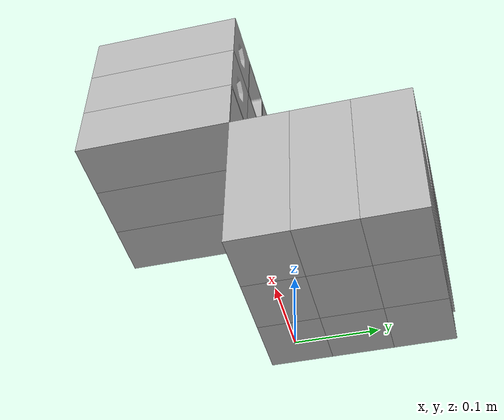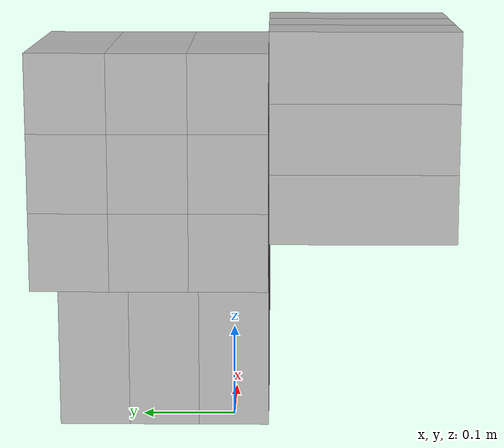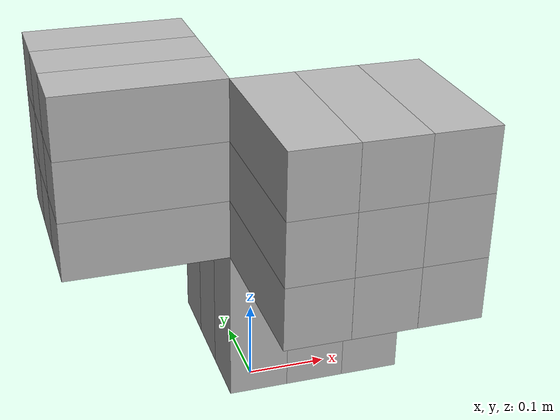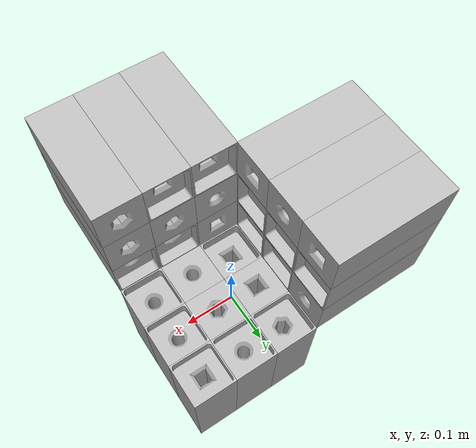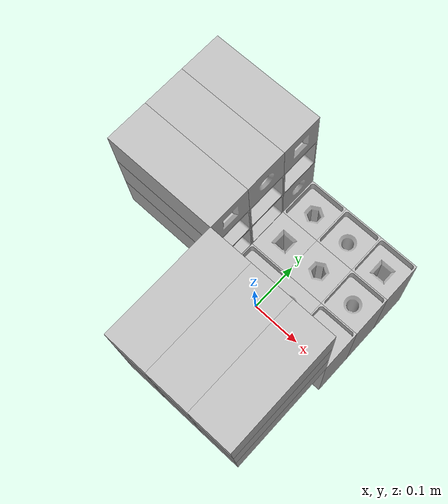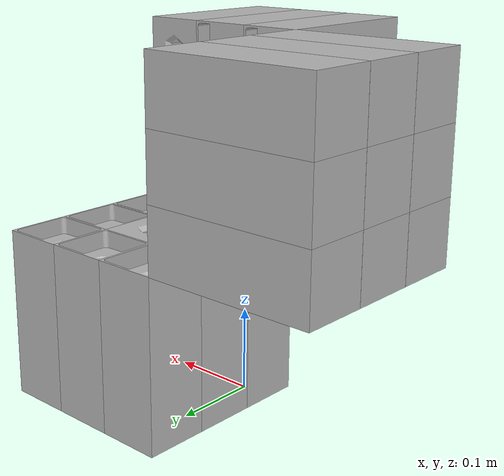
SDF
<sdf version='1.7'>
  <model name='pegboard_puzzle'>
    <link name='base_link'>
      <inertial>
        <pose>0 0 0 0 -0 0</pose>
        <mass>1</mass>
        <inertia>
          <ixx>1</ixx>
          <ixy>1</ixy>
          <ixz>1</ixz>
          <iyy>1</iyy>
          <iyz>1</iyz>
          <izz>1</izz>
        </inertia>
      </inertial>
    </link>
    <joint name='base_to_floor' type='fixed'>
      <pose relative_to='base_link'>0.15 0 0.2 0 -0 1.57</pose>
      <parent>base_link</parent>
      <child>floor</child>
      <axis>
        <dynamics>
          <spring_reference>0</spring_reference>
          <spring_stiffness>0</spring_stiffness>
        </dynamics>
        <xyz>0 0 1</xyz>
        <limit>
          <lower>-1e+16</lower>
          <upper>1e+16</upper>
        </limit>
      </axis>
      <physics>
        <ode>
          <limit>
            <cfm>0</cfm>
            <erp>0.2</erp>
          </limit>
        </ode>
      </physics>
    </joint>
    <link name='floor'>
      <pose relative_to='base_to_floor'>0 0 0 0 -0 0</pose>
      <inertial>
        <pose>0.0675 0.0675 0 0 -0 0</pose>
        <mass>10</mass>
        <inertia>
          <ixx>10.0388</ixx>
          <ixy>-7.99789</ixy>
          <ixz>10.0072</ixz>
          <iyy>10.0245</iyy>
          <iyz>-7.99999</iyz>
          <izz>10.092</izz>
        </inertia>
      </inertial>
      <collision name='floor_slot_0_collision'>
        <pose>0 0 0 1.57 -0 0</pose>
        <geometry>
          <mesh>
            <scale>1 1 1</scale>
            <uri>model://puzzle/meshes/lowCircleHole.STL</uri>
          </mesh>
        </geometry>
      </collision>
      <collision name='floor_slot_1_collision_1'>
        <pose>0 0.075 0 1.57 -0 0</pose>
        <geometry>
          <mesh>
            <scale>1 1 1</scale>
            <uri>model://puzzle/meshes/highCircleHole.STL</uri>
          </mesh>
        </geometry>
      </collision>
      <collision name='floor_slot_2_collision_2'>
        <pose>0 0.15 0 1.57 -0 0</pose>
        <geometry>
          <mesh>
            <scale>1 1 1</scale>
            <uri>model://puzzle/meshes/lowSquareHole.STL</uri>
          </mesh>
        </geometry>
      </collision>
      <collision name='floor_slot_3_collision_3'>
        <pose>0.075 0 0 1.57 -0 0</pose>
        <geometry>
          <mesh>
            <scale>1 1 1</scale>
            <uri>model://puzzle/meshes/lowCircleHole.STL</uri>
          </mesh>
        </geometry>
      </collision>
      <collision name='floor_slot_4_collision_4'>
        <pose>0.075 0.075 0 1.57 -0 0</pose>
        <geometry>
          <mesh>
            <scale>1 1 1</scale>
            <uri>model://puzzle/meshes/highHexHole.STL</uri>
          </mesh>
        </geometry>
      </collision>
      <collision name='floor_slot_5_collision_5'>
        <pose>0.075 0.15 0 1.57 -0 0</pose>
        <geometry>
          <mesh>
            <scale>1 1 1</scale>
            <uri>model://puzzle/meshes/highSquareHole.STL</uri>
          </mesh>
        </geometry>
      </collision>
      <collision name='floor_slot_6_collision_6'>
        <pose>0.15 0 0 1.57 -0 0</pose>
        <geometry>
          <mesh>
            <scale>1 1 1</scale>
            <uri>model://puzzle/meshes/lowSquareHole.STL</uri>
          </mesh>
        </geometry>
      </collision>
      <collision name='floor_slot_7_collision_7'>
        <pose>0.15 0.075 0 1.57 -0 0</pose>
        <geometry>
          <mesh>
            <scale>1 1 1</scale>
            <uri>model://puzzle/meshes/lowCircleHole.STL</uri>
          </mesh>
        </geometry>
      </collision>
      <collision name='floor_slot_8_collision_8'>
        <pose>0.15 0.15 0 1.57 -0 0</pose>
        <geometry>
          <mesh>
            <scale>1 1 1</scale>
            <uri>model://puzzle/meshes/lowHexHole.STL</uri>
          </mesh>
        </geometry>
      </collision>
      <visual name='floor_slot_0_visual'>
        <pose>0 0 0 1.57 -0 0</pose>
        <geometry>
          <mesh>
            <scale>1 1 1</scale>
            <uri>model://puzzle/meshes/lowCircleHole.STL</uri>
          </mesh>
        </geometry>
      </visual>
      <visual name='floor_slot_1_visual_1'>
        <pose>0 0.075 0 1.57 -0 0</pose>
        <geometry>
          <mesh>
            <scale>1 1 1</scale>
            <uri>model://puzzle/meshes/highCircleHole.STL</uri>
          </mesh>
        </geometry>
      </visual>
      <visual name='floor_slot_2_visual_2'>
        <pose>0 0.15 0 1.57 -0 0</pose>
        <geometry>
          <mesh>
            <scale>1 1 1</scale>
            <uri>model://puzzle/meshes/lowSquareHole.STL</uri>
          </mesh>
        </geometry>
      </visual>
      <visual name='floor_slot_3_visual_3'>
        <pose>0.075 0 0 1.57 -0 0</pose>
        <geometry>
          <mesh>
            <scale>1 1 1</scale>
            <uri>model://puzzle/meshes/lowCircleHole.STL</uri>
          </mesh>
        </geometry>
      </visual>
      <visual name='floor_slot_4_visual_4'>
        <pose>0.075 0.075 0 1.57 -0 0</pose>
        <geometry>
          <mesh>
            <scale>1 1 1</scale>
            <uri>model://puzzle/meshes/highHexHole.STL</uri>
          </mesh>
        </geometry>
      </visual>
      <visual name='floor_slot_5_visual_5'>
        <pose>0.075 0.15 0 1.57 -0 0</pose>
        <geometry>
          <mesh>
            <scale>1 1 1</scale>
            <uri>model://puzzle/meshes/highSquareHole.STL</uri>
          </mesh>
        </geometry>
      </visual>
      <visual name='floor_slot_6_visual_6'>
        <pose>0.15 0 0 1.57 -0 0</pose>
        <geometry>
          <mesh>
            <scale>1 1 1</scale>
            <uri>model://puzzle/meshes/lowSquareHole.STL</uri>
          </mesh>
        </geometry>
      </visual>
      <visual name='floor_slot_7_visual_7'>
        <pose>0.15 0.075 0 1.57 -0 0</pose>
        <geometry>
          <mesh>
            <scale>1 1 1</scale>
            <uri>model://puzzle/meshes/lowCircleHole.STL</uri>
          </mesh>
        </geometry>
      </visual>
      <visual name='floor_slot_8_visual_8'>
        <pose>0.15 0.15 0 1.57 -0 0</pose>
        <geometry>
          <mesh>
            <scale>1 1 1</scale>
            <uri>model://puzzle/meshes/lowHexHole.STL</uri>
          </mesh>
        </geometry>
      </visual>
    </link>
    <joint name='base_to_left' type='fixed'>
      <pose relative_to='base_link'>0.15 -0.037 0.387 -1.57 1.57 0</pose>
      <parent>base_link</parent>
      <child>left_wall</child>
      <axis>
        <dynamics>
          <spring_reference>0</spring_reference>
          <spring_stiffness>0</spring_stiffness>
        </dynamics>
        <xyz>0 0 1</xyz>
        <limit>
          <lower>-1e+16</lower>
          <upper>1e+16</upper>
        </limit>
      </axis>
      <physics>
        <ode>
          <limit>
            <cfm>0</cfm>
            <erp>0.2</erp>
          </limit>
        </ode>
      </physics>
    </joint>
    <link name='left_wall'>
      <pose relative_to='base_to_left'>0 0 0 0 -0 0</pose>
      <inertial>
        <pose>0.0675 0.0675 0 0 -0 0</pose>
        <mass>10</mass>
        <inertia>
          <ixx>10.0388</ixx>
          <ixy>-7.99789</ixy>
          <ixz>10.0072</ixz>
          <iyy>10.0245</iyy>
          <iyz>-7.99999</iyz>
          <izz>10.092</izz>
        </inertia>
      </inertial>
      <collision name='left_wall_slot_0_collision'>
        <pose>0 0 0 1.57 -0 0</pose>
        <geometry>
          <mesh>
            <scale>1 1 1</scale>
            <uri>model://puzzle/meshes/highHexHole.STL</uri>
          </mesh>
        </geometry>
      </collision>
      <collision name='left_wall_slot_1_collision_1'>
        <pose>0 0.075 0 1.57 -0 0</pose>
        <geometry>
          <mesh>
            <scale>1 1 1</scale>
            <uri>model://puzzle/meshes/lowSquareHole.STL</uri>
          </mesh>
        </geometry>
      </collision>
      <collision name='left_wall_slot_2_collision_2'>
        <pose>0 0.15 0 1.57 -0 0</pose>
        <geometry>
          <mesh>
            <scale>1 1 1</scale>
            <uri>model://puzzle/meshes/lowSquareHole.STL</uri>
          </mesh>
        </geometry>
      </collision>
      <collision name='left_wall_slot_3_collision_3'>
        <pose>0.075 0 0 1.57 -0 0</pose>
        <geometry>
          <mesh>
            <scale>1 1 1</scale>
            <uri>model://puzzle/meshes/highHexHole.STL</uri>
          </mesh>
        </geometry>
      </collision>
      <collision name='left_wall_slot_4_collision_4'>
        <pose>0.075 0.075 0 1.57 -0 0</pose>
        <geometry>
          <mesh>
            <scale>1 1 1</scale>
            <uri>model://puzzle/meshes/highHexHole.STL</uri>
          </mesh>
        </geometry>
      </collision>
      <collision name='left_wall_slot_5_collision_5'>
        <pose>0.075 0.15 0 1.57 -0 0</pose>
        <geometry>
          <mesh>
            <scale>1 1 1</scale>
            <uri>model://puzzle/meshes/highCircleHole.STL</uri>
          </mesh>
        </geometry>
      </collision>
      <collision name='left_wall_slot_6_collision_6'>
        <pose>0.15 0 0 1.57 -0 0</pose>
        <geometry>
          <mesh>
            <scale>1 1 1</scale>
            <uri>model://puzzle/meshes/lowCircleHole.STL</uri>
          </mesh>
        </geometry>
      </collision>
      <collision name='left_wall_slot_7_collision_7'>
        <pose>0.15 0.075 0 1.57 -0 0</pose>
        <geometry>
          <mesh>
            <scale>1 1 1</scale>
            <uri>model://puzzle/meshes/lowHexHole.STL</uri>
          </mesh>
        </geometry>
      </collision>
      <collision name='left_wall_slot_8_collision_8'>
        <pose>0.15 0.15 0 1.57 -0 0</pose>
        <geometry>
          <mesh>
            <scale>1 1 1</scale>
            <uri>model://puzzle/meshes/highSquareHole.STL</uri>
          </mesh>
        </geometry>
      </collision>
      <visual name='left_wall_slot_0_visual'>
        <pose>0 0 0 1.57 -0 0</pose>
        <geometry>
          <mesh>
            <scale>1 1 1</scale>
            <uri>model://puzzle/meshes/highHexHole.STL</uri>
          </mesh>
        </geometry>
      </visual>
      <visual name='left_wall_slot_1_visual_1'>
        <pose>0 0.075 0 1.57 -0 0</pose>
        <geometry>
          <mesh>
            <scale>1 1 1</scale>
            <uri>model://puzzle/meshes/lowSquareHole.STL</uri>
          </mesh>
        </geometry>
      </visual>
      <visual name='left_wall_slot_2_visual_2'>
        <pose>0 0.15 0 1.57 -0 0</pose>
        <geometry>
          <mesh>
            <scale>1 1 1</scale>
            <uri>model://puzzle/meshes/lowSquareHole.STL</uri>
          </mesh>
        </geometry>
      </visual>
      <visual name='left_wall_slot_3_visual_3'>
        <pose>0.075 0 0 1.57 -0 0</pose>
        <geometry>
          <mesh>
            <scale>1 1 1</scale>
            <uri>model://puzzle/meshes/highHexHole.STL</uri>
          </mesh>
        </geometry>
      </visual>
      <visual name='left_wall_slot_4_visual_4'>
        <pose>0.075 0.075 0 1.57 -0 0</pose>
        <geometry>
          <mesh>
            <scale>1 1 1</scale>
            <uri>model://puzzle/meshes/highHexHole.STL</uri>
          </mesh>
        </geometry>
      </visual>
      <visual name='left_wall_slot_5_visual_5'>
        <pose>0.075 0.15 0 1.57 -0 0</pose>
        <geometry>
          <mesh>
            <scale>1 1 1</scale>
            <uri>model://puzzle/meshes/highCircleHole.STL</uri>
          </mesh>
        </geometry>
      </visual>
      <visual name='left_wall_slot_6_visual_6'>
        <pose>0.15 0 0 1.57 -0 0</pose>
        <geometry>
          <mesh>
            <scale>1 1 1</scale>
            <uri>model://puzzle/meshes/lowCircleHole.STL</uri>
          </mesh>
        </geometry>
      </visual>
      <visual name='left_wall_slot_7_visual_7'>
        <pose>0.15 0.075 0 1.57 -0 0</pose>
        <geometry>
          <mesh>
            <scale>1 1 1</scale>
            <uri>model://puzzle/meshes/lowHexHole.STL</uri>
          </mesh>
        </geometry>
      </visual>
      <visual name='left_wall_slot_8_visual_8'>
        <pose>0.15 0.15 0 1.57 -0 0</pose>
        <geometry>
          <mesh>
            <scale>1 1 1</scale>
            <uri>model://puzzle/meshes/highSquareHole.STL</uri>
          </mesh>
        </geometry>
      </visual>
    </link>
    <joint name='base_to_right' type='fixed'>
      <pose relative_to='base_link'>-0.037 0 0.387 0 1.57 0</pose>
      <parent>base_link</parent>
      <child>right_wall</child>
      <axis>
        <dynamics>
          <spring_reference>0</spring_reference>
          <spring_stiffness>0</spring_stiffness>
        </dynamics>
        <xyz>0 0 1</xyz>
        <limit>
          <lower>-1e+16</lower>
          <upper>1e+16</upper>
        </limit>
      </axis>
      <physics>
        <ode>
          <limit>
            <cfm>0</cfm>
            <erp>0.2</erp>
          </limit>
        </ode>
      </physics>
    </joint>
    <link name='right_wall'>
      <pose relative_to='base_to_right'>0 0 0 0 -0 0</pose>
      <inertial>
        <pose>0.0675 0.0675 0 0 -0 0</pose>
        <mass>10</mass>
        <inertia>
          <ixx>10.0388</ixx>
          <ixy>-7.99789</ixy>
          <ixz>10.0072</ixz>
          <iyy>10.0245</iyy>
          <iyz>-7.99999</iyz>
          <izz>10.092</izz>
        </inertia>
      </inertial>
      <collision name='right_wall_slot_1_collision'>
        <pose>0 0.075 0 1.57 -0 0</pose>
        <geometry>
          <mesh>
            <scale>1 1 1</scale>
            <uri>model://puzzle/meshes/highCircleHole.STL</uri>
          </mesh>
        </geometry>
      </collision>
      <collision name='right_wall_slot_2_collision_1'>
        <pose>0 0.15 0 1.57 -0 0</pose>
        <geometry>
          <mesh>
            <scale>1 1 1</scale>
            <uri>model://puzzle/meshes/highSquareHole.STL</uri>
          </mesh>
        </geometry>
      </collision>
      <collision name='right_wall_slot_3_collision_2'>
        <pose>0.075 0 0 1.57 -0 0</pose>
        <geometry>
          <mesh>
            <scale>1 1 1</scale>
            <uri>model://puzzle/meshes/lowHexHole.STL</uri>
          </mesh>
        </geometry>
      </collision>
      <collision name='right_wall_slot_4_collision_3'>
        <pose>0.075 0.075 0 1.57 -0 0</pose>
        <geometry>
          <mesh>
            <scale>1 1 1</scale>
            <uri>model://puzzle/meshes/lowHexHole.STL</uri>
          </mesh>
        </geometry>
      </collision>
      <collision name='right_wall_slot_5_collision_4'>
        <pose>0.075 0.15 0 1.57 -0 0</pose>
        <geometry>
          <mesh>
            <scale>1 1 1</scale>
            <uri>model://puzzle/meshes/lowHexHole.STL</uri>
          </mesh>
        </geometry>
      </collision>
      <collision name='right_wall_slot_6_collision_5'>
        <pose>0.15 0 0 1.57 -0 0</pose>
        <geometry>
          <mesh>
            <scale>1 1 1</scale>
            <uri>model://puzzle/meshes/lowSquareHole.STL</uri>
          </mesh>
        </geometry>
      </collision>
      <collision name='right_wall_slot_7_collision_6'>
        <pose>0.15 0.075 0 1.57 -0 0</pose>
        <geometry>
          <mesh>
            <scale>1 1 1</scale>
            <uri>model://puzzle/meshes/lowCircleHole.STL</uri>
          </mesh>
        </geometry>
      </collision>
      <collision name='right_wall_slot_8_collision_7'>
        <pose>0.15 0.15 0 1.57 -0 0</pose>
        <geometry>
          <mesh>
            <scale>1 1 1</scale>
            <uri>model://puzzle/meshes/highCircleHole.STL</uri>
          </mesh>
        </geometry>
      </collision>
      <collision name='right_wall_slot_0_collision_8'>
        <pose>0 0 0 1.57 -0 0</pose>
        <geometry>
          <mesh>
            <scale>1 1 1</scale>
            <uri>model://puzzle/meshes/highSquareHole.STL</uri>
          </mesh>
        </geometry>
      </collision>
      <visual name='right_wall_slot_1_visual'>
        <pose>0 0.075 0 1.57 -0 0</pose>
        <geometry>
          <mesh>
            <scale>1 1 1</scale>
            <uri>model://puzzle/meshes/highCircleHole.STL</uri>
          </mesh>
        </geometry>
      </visual>
      <visual name='right_wall_slot_2_visual_1'>
        <pose>0 0.15 0 1.57 -0 0</pose>
        <geometry>
          <mesh>
            <scale>1 1 1</scale>
            <uri>model://puzzle/meshes/highSquareHole.STL</uri>
          </mesh>
        </geometry>
      </visual>
      <visual name='right_wall_slot_3_visual_2'>
        <pose>0.075 0 0 1.57 -0 0</pose>
        <geometry>
          <mesh>
            <scale>1 1 1</scale>
            <uri>model://puzzle/meshes/lowHexHole.STL</uri>
          </mesh>
        </geometry>
      </visual>
      <visual name='right_wall_slot_4_visual_3'>
        <pose>0.075 0.075 0 1.57 -0 0</pose>
        <geometry>
          <mesh>
            <scale>1 1 1</scale>
            <uri>model://puzzle/meshes/lowHexHole.STL</uri>
          </mesh>
        </geometry>
      </visual>
      <visual name='right_wall_slot_5_visual_4'>
        <pose>0.075 0.15 0 1.57 -0 0</pose>
        <geometry>
          <mesh>
            <scale>1 1 1</scale>
            <uri>model://puzzle/meshes/lowHexHole.STL</uri>
          </mesh>
        </geometry>
      </visual>
      <visual name='right_wall_slot_6_visual_5'>
        <pose>0.15 0 0 1.57 -0 0</pose>
        <geometry>
          <mesh>
            <scale>1 1 1</scale>
            <uri>model://puzzle/meshes/lowSquareHole.STL</uri>
          </mesh>
        </geometry>
      </visual>
      <visual name='right_wall_slot_7_visual_6'>
        <pose>0.15 0.075 0 1.57 -0 0</pose>
        <geometry>
          <mesh>
            <scale>1 1 1</scale>
            <uri>model://puzzle/meshes/lowCircleHole.STL</uri>
          </mesh>
        </geometry>
      </visual>
      <visual name='right_wall_slot_8_visual_7'>
        <pose>0.15 0.15 0 1.57 -0 0</pose>
        <geometry>
          <mesh>
            <scale>1 1 1</scale>
            <uri>model://puzzle/meshes/highCircleHole.STL</uri>
          </mesh>
        </geometry>
      </visual>
      <visual name='right_wall_slot_0_visual_8'>
        <pose>0 0 0 1.57 -0 0</pose>
        <geometry>
          <mesh>
            <scale>1 1 1</scale>
            <uri>model://puzzle/meshes/highSquareHole.STL</uri>
          </mesh>
        </geometry>
      </visual>
    </link>
    <static>1</static>
  </model>
</sdf>
